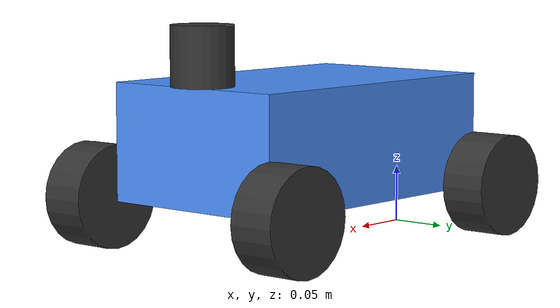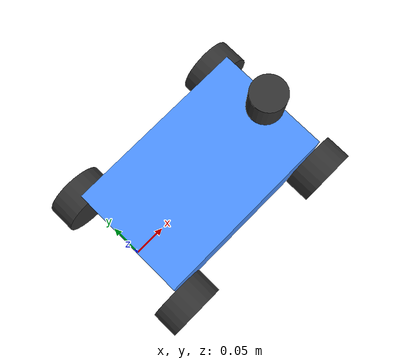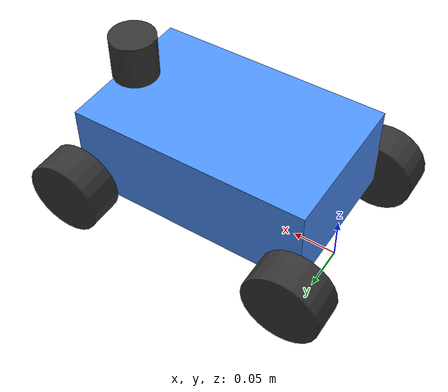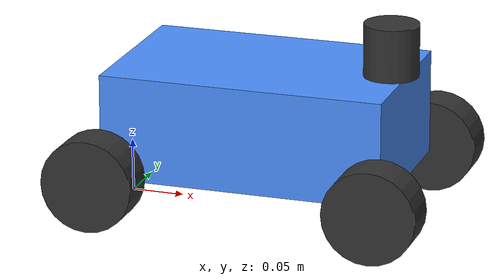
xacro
<?xml version="1.0"?>

<!-- A simple model of the racecar for rviz -->

<robot xmlns:xacro="http://www.ros.org/wiki/xacro" name="racecar">

  <!-- Constantes -->
  <xacro:property name="pi" value="3.14159265359"/>

  <!-- Dimensions -->
  <xacro:property name="wheelbase" value="0.27" />
  <xacro:property name="width" value="0.170" />
  <xacro:property name="height" value="0.1" />
  <xacro:property name="ground_offset" value="0.04" />
  <xacro:property name="wheel_radius" value="0.044" />
  <xacro:property name="wheel_length" value="0.04" />
  <xacro:property name="laser_distance_from_base_link" value="0.255" />
  <xacro:property name="laser_height" value="0.05" />
  <xacro:property name="laser_radius" value="0.026" />

  <!-- Materials -->
  <material name="black">
    <color rgba="0.2 0.2 0.2 1."/>
  </material>

  <material name="blue">
    <color rgba="0.3 0.57 1. 1."/>
  </material>

  <!-- Base -->
  <link name="base_link">
    <visual>
      <origin xyz="${wheelbase/2} 0 ${ground_offset+height/2}"/>
      <geometry>
        <box size="${wheelbase} ${width} ${height}"/>
      </geometry>
      <material name="blue"/>
    </visual>
  </link>

  <!-- Lidar -->
  <joint name="base_to_laser_model" type="fixed">
    <parent link="base_link"/>
    <child link="laser"/>
    <origin xyz="${laser_distance_from_base_link} 0 ${ground_offset+height+(laser_height/2)}" />
  </joint>

  <link name="laser">
    <visual>
      <geometry>
        <cylinder radius="${laser_radius}" length="${laser_height}"/>
      </geometry>
      <material name="black"/>
    </visual>
  </link>

  <!-- Rear Left Wheel -->
  <joint name="base_to_back_left_wheel" type="fixed">
    <parent link="base_link"/>
    <child link="back_left_wheel"/>
    <origin xyz="0 ${(wheel_length+width)/2} ${wheel_radius}"/>
  </joint>

  <link name="back_left_wheel">
    <visual>
      <geometry>
        <cylinder radius="${wheel_radius}" length="${wheel_length}"/>
      </geometry>
      <material name="black"/>
      <origin rpy="${pi/2} 0 0"/>
    </visual>
  </link>

  <!-- Rear Right Wheel -->
  <joint name="base_to_back_right_wheel" type="fixed">
    <parent link="base_link"/>
    <child link="back_right_wheel"/>
    <origin xyz="0 ${-(wheel_length+width)/2} ${wheel_radius}"/>
  </joint>

  <link name="back_right_wheel">
    <visual>
      <geometry>
        <cylinder radius="${wheel_radius}" length="${wheel_length}"/>
      </geometry>
      <material name="black"/>
      <origin rpy="${pi/2} 0 0"/>
    </visual>
  </link>

  <!-- Front Left Wheel -->
  <joint name="base_to_front_left_hinge" type="fixed">
    <parent link="base_link"/>
    <child link="front_left_hinge"/>
    <origin xyz="${wheelbase} ${(wheel_length+width)/2} ${wheel_radius}"/>
  </joint>

  <link name="front_left_hinge"/>

  <joint name="front_left_hinge_to_wheel" type="fixed">  <!-- passer en continuous -->

    <parent link="front_left_hinge"/>
    <child link="front_left_wheel"/>
  </joint>

  <link name="front_left_wheel">
    <visual>
      <geometry>
        <cylinder radius="${wheel_radius}" length="${wheel_length}"/>
      </geometry>
      <material name="black"/>
      <origin rpy="${pi/2} 0 0"/>
    </visual>
  </link>

  <!-- Front Right Wheel -->
  <joint name="base_to_front_right_hinge" type="fixed">
    <parent link="base_link"/>
    <child link="front_right_hinge"/>
    <origin xyz="${wheelbase} ${-(wheel_length+width)/2} ${wheel_radius}"/>
  </joint>

  <link name="front_right_hinge"/>

  <joint name="front_right_hinge_to_wheel" type="fixed"> <!-- passer en continuous -->
    <parent link="front_right_hinge"/>
    <child link="front_right_wheel"/>
  </joint>

  <link name="front_right_wheel">
    <visual>
      <geometry>
        <cylinder radius="${wheel_radius}" length="${wheel_length}"/>
      </geometry>
      <material name="black"/>
      <origin rpy="${pi/2} 0 0"/>
    </visual>
  </link>

</robot>
